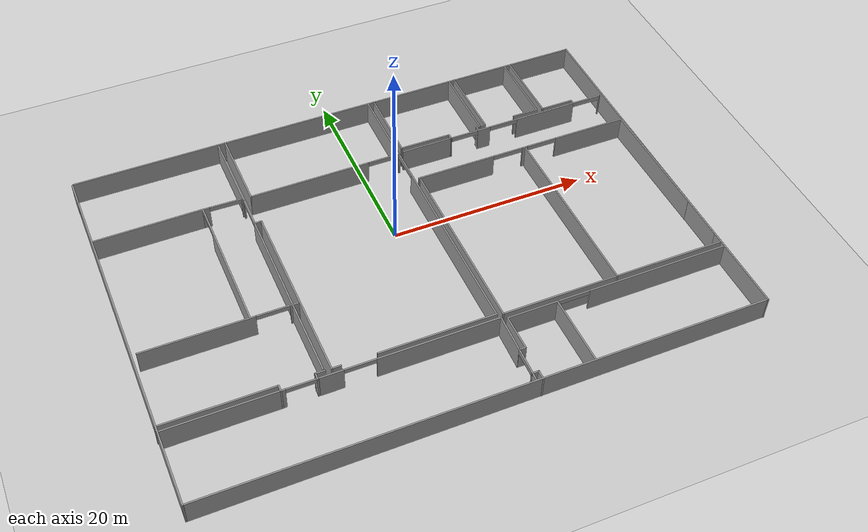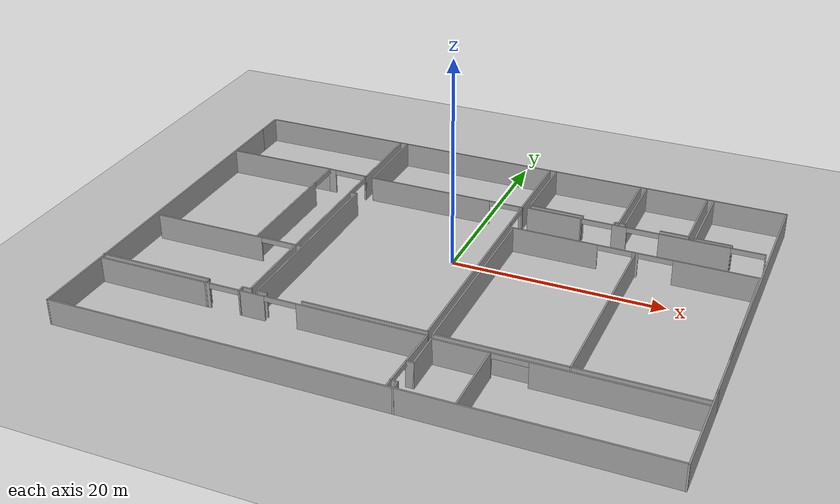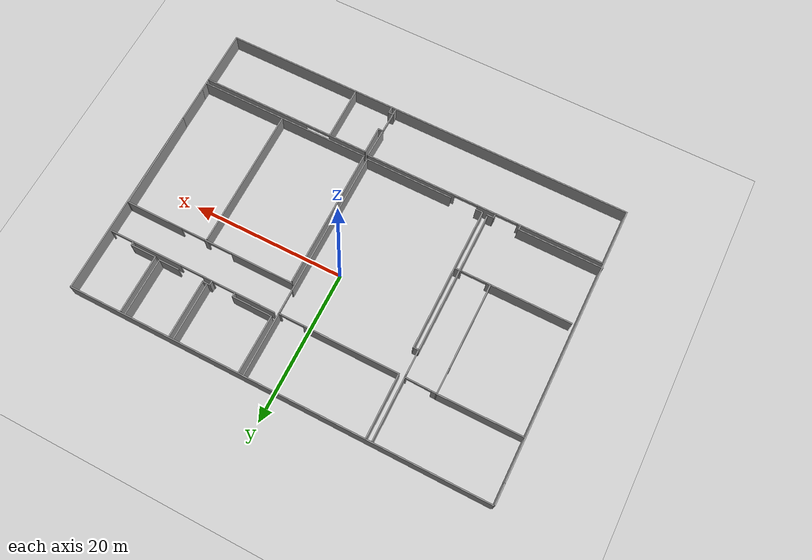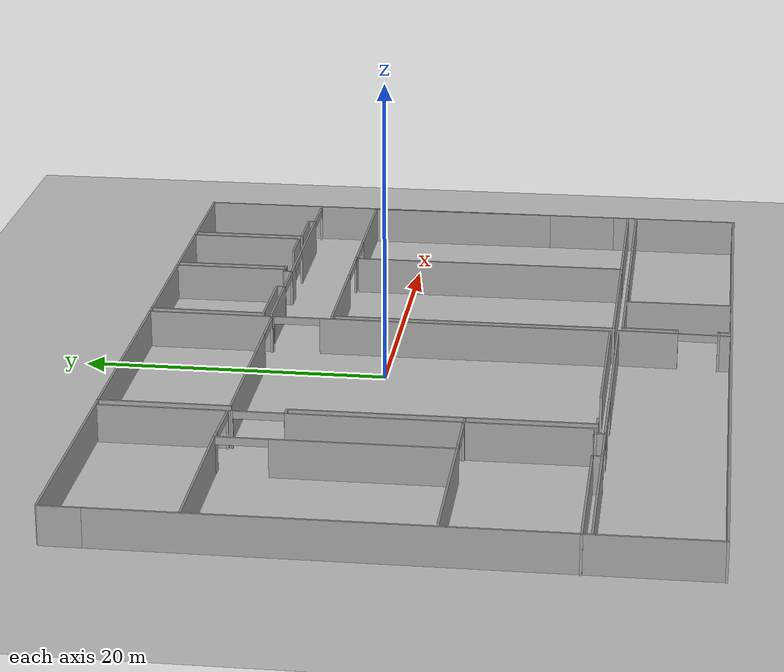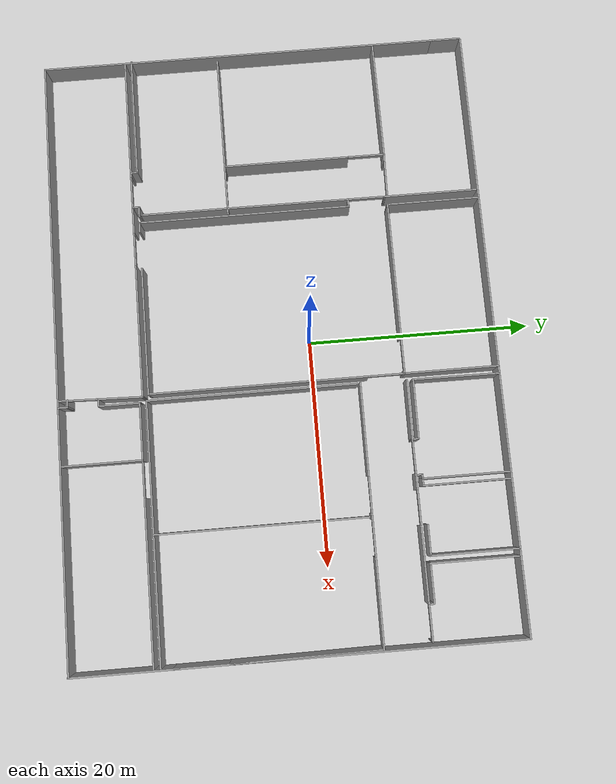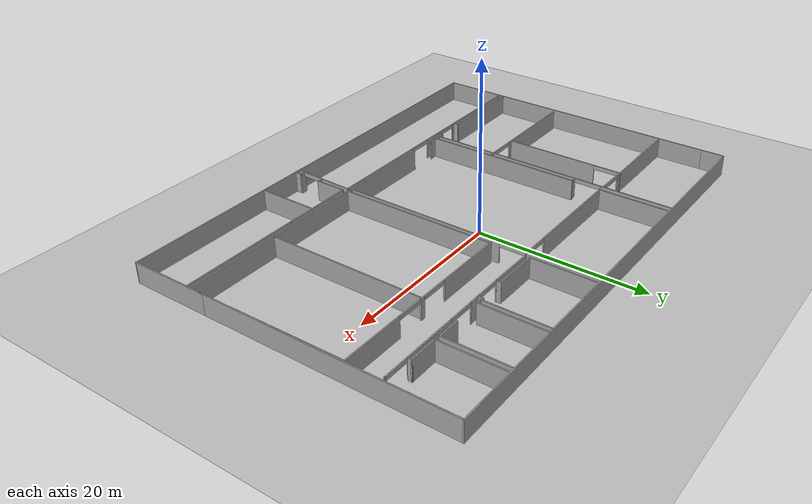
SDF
<sdf version="1.7">
 <world name="default">
  <model name="ground_plane">
   <static>1</static>
   <link name="link">
    <collision name="collision">
     <geometry><plane><normal>0 0 1</normal><size>100 100</size></plane></geometry>
     <surface>
      <contact><collide_bitmask>65535</collide_bitmask></contact>
      <friction><ode><mu>100</mu><mu2>50</mu2></ode></friction>
     </surface>
    </collision>
    <visual name="visual">
     <cast_shadows>0</cast_shadows>
     <geometry><plane><normal>0 0 1</normal><size>100 100</size></plane></geometry>
     <material>
      <script><uri>file://media/materials/scripts/gazebo.material</uri><name>Gazebo/Grey</name></script>
     </material>
    </visual>
   </link>
  </model>
  <light name="sun" type="directional">
   <pose>0 0 10 0 -0 0</pose>
   <diffuse>0.8 0.8 0.8 1</diffuse>
   <specular>0.2 0.2 0.2 1</specular>
   <attenuation>
    <range>1000</range>
    <constant>0.9</constant>
    <linear>0.01</linear>
    <quadratic>0.001</quadratic>
   </attenuation>
   <direction>-0.5 0.1 -0.9</direction>
   <spot><inner_angle>0</inner_angle><outer_angle>0</outer_angle><falloff>0</falloff></spot>
  </light>
  <scene><shadows>0</shadows><ambient>0.4 0.4 0.4 1</ambient><background>0.7 0.7 0.7 1</background></scene>
  <physics type="ode">
   <real_time_update_rate>1000</real_time_update_rate>
   <max_step_size>0.001</max_step_size>
   <real_time_factor>1</real_time_factor>
   <ode>
    <solver>
     <type>quick</type>
     <iters>150</iters>
     <precon_iters>0</precon_iters>
     <sor>1.4</sor>
     <use_dynamic_moi_rescaling>1</use_dynamic_moi_rescaling>
    </solver>
    <constraints>
     <cfm>1e-05</cfm>
     <erp>0.2</erp>
     <contact_max_correcting_vel>2000</contact_max_correcting_vel>
     <contact_surface_layer>0.01</contact_surface_layer>
    </constraints>
   </ode>
  </physics>
  <gravity>0 0 -9.8</gravity>
  <magnetic_field>6e-06 2.3e-05 -4.2e-05</magnetic_field>
  <atmosphere type="adiabatic"/>
  <spherical_coordinates>
   <surface_model>EARTH_WGS84</surface_model>
   <latitude_deg>0</latitude_deg>
   <longitude_deg>0</longitude_deg>
   <elevation>0</elevation>
   <heading_deg>0</heading_deg>
  </spherical_coordinates>
  <model name="Planta_2_acso">
   <pose>-0.237871 -3.03134 0 0 -0 0</pose>
   <link name="Wall_0">
    <collision name="Wall_0_Collision">
     <geometry><box><size>54.6462 0.15 2.5</size></box></geometry>
     <pose>0 0 1.25 0 -0 0</pose>
    </collision>
    <visual name="Wall_0_Visual">
     <pose>0 0 1.25 0 -0 0</pose>
     <geometry><box><size>54.6462 0.15 2.5</size></box></geometry>
     <material>
      <script><uri>file://media/materials/scripts/gazebo.material</uri><name>Gazebo/Grey</name></script>
      <ambient>1 1 1 1</ambient>
     </material>
     <meta><layer>0</layer></meta>
    </visual>
    <pose>0.111827 19.5205 0 0 -0 0</pose>
   </link>
   <link name="Wall_1">
    <collision name="Wall_1_Collision">
     <geometry><box><size>30.25 0.15 2.5</size></box></geometry>
     <pose>0 0 1.25 0 -0 0</pose>
    </collision>
    <visual name="Wall_1_Visual">
     <pose>0 0 1.25 0 -0 0</pose>
     <geometry><box><size>30.25 0.15 2.5</size></box></geometry>
     <material>
      <script><uri>file://media/materials/scripts/gazebo.material</uri><name>Gazebo/Grey</name></script>
      <ambient>1 1 1 1</ambient>
     </material>
     <meta><layer>0</layer></meta>
    </visual>
    <pose>27.3497 4.47048 0 0 -0 -1.5708</pose>
   </link>
   <link name="Wall_10">
    <pose>-11.457 -12.0264 0 0 -0 0</pose>
    <visual name="Wall_10_Visual_0">
     <pose>-10.1985 0 1.25 0 -0 0</pose>
     <geometry><box><size>11.1031 0.15 2.5</size></box></geometry>
     <material>
      <script><uri>file://media/materials/scripts/gazebo.material</uri><name>Gazebo/Grey</name></script>
      <ambient>1 1 1 1</ambient>
     </material>
     <meta><layer>0</layer></meta>
    </visual>
    <collision name="Wall_10_Collision_0">
     <geometry><box><size>11.1031 0.15 2.5</size></box></geometry>
     <pose>-10.1985 0 1.25 0 -0 0</pose>
    </collision>
    <visual name="Wall_10_Visual_1">
     <pose>-0.470314 0 1.25 0 -0 0</pose>
     <geometry><box><size>2.29482 0.15 2.5</size></box></geometry>
     <material>
      <script><uri>file://media/materials/scripts/gazebo.material</uri><name>Gazebo/Grey</name></script>
      <ambient>1 1 1 1</ambient>
     </material>
     <meta><layer>0</layer></meta>
    </visual>
    <collision name="Wall_10_Collision_1">
     <geometry><box><size>2.29482 0.15 2.5</size></box></geometry>
     <pose>-0.470314 0 1.25 0 -0 0</pose>
    </collision>
    <visual name="Wall_10_Visual_2">
     <pose>9.73709 0 1.25 0 -0 0</pose>
     <geometry><box><size>12.0258 0.15 2.5</size></box></geometry>
     <material>
      <script><uri>file://media/materials/scripts/gazebo.material</uri><name>Gazebo/Grey</name></script>
      <ambient>1 1 1 1</ambient>
     </material>
     <meta><layer>0</layer></meta>
    </visual>
    <collision name="Wall_10_Collision_2">
     <geometry><box><size>12.0258 0.15 2.5</size></box></geometry>
     <pose>9.73709 0 1.25 0 -0 0</pose>
    </collision>
    <visual name="Wall_10_Visual_3">
     <pose>-3.13232 0 2.25 0 -0 0</pose>
     <geometry><box><size>3.02918 0.15 0.5</size></box></geometry>
     <material>
      <script><uri>file://media/materials/scripts/gazebo.material</uri><name>Gazebo/Grey</name></script>
      <ambient>1 1 1 1</ambient>
     </material>
     <meta><layer>0</layer></meta>
    </visual>
    <collision name="Wall_10_Collision_3">
     <geometry><box><size>3.02918 0.15 0.5</size></box></geometry>
     <pose>-3.13232 0 2.25 0 -0 0</pose>
    </collision>
    <visual name="Wall_10_Visual_4">
     <pose>2.20064 0 2.25 0 -0 0</pose>
     <geometry><box><size>3.04709 0.15 0.5</size></box></geometry>
     <material>
      <script><uri>file://media/materials/scripts/gazebo.material</uri><name>Gazebo/Grey</name></script>
      <ambient>1 1 1 1</ambient>
     </material>
     <meta><layer>0</layer></meta>
    </visual>
    <collision name="Wall_10_Collision_4">
     <geometry><box><size>3.04709 0.15 0.5</size></box></geometry>
     <pose>2.20064 0 2.25 0 -0 0</pose>
    </collision>
   </link>
   <link name="Wall_100">
    <collision name="Wall_100_Collision">
     <geometry><box><size>11.75 0.15 2.5</size></box></geometry>
     <pose>0 0 1.25 0 -0 0</pose>
    </collision>
    <visual name="Wall_100_Visual">
     <pose>0 0 1.25 0 -0 0</pose>
     <geometry><box><size>11.75 0.15 2.5</size></box></geometry>
     <material>
      <script><uri>file://media/materials/scripts/gazebo.material</uri><name>Gazebo/Grey</name></script>
      <ambient>1 1 1 1</ambient>
     </material>
     <meta><layer>0</layer></meta>
    </visual>
    <pose>10.3815 -11.7028 0 0 -0 0</pose>
   </link>
   <link name="Wall_102">
    <collision name="Wall_102_Collision">
     <geometry><box><size>18.75 0.15 2.5</size></box></geometry>
     <pose>0 0 1.25 0 -0 0</pose>
    </collision>
    <visual name="Wall_102_Visual">
     <pose>0 0 1.25 0 -0 0</pose>
     <geometry><box><size>18.75 0.15 2.5</size></box></geometry>
     <material>
      <script><uri>file://media/materials/scripts/gazebo.material</uri><name>Gazebo/Grey</name></script>
      <ambient>1 1 1 1</ambient>
     </material>
     <meta><layer>0</layer></meta>
    </visual>
    <pose>16.1815 -2.40281 0 0 -0 1.5708</pose>
   </link>
   <link name="Wall_104">
    <collision name="Wall_104_Collision">
     <geometry><box><size>11.25 0.15 2.5</size></box></geometry>
     <pose>0 0 1.25 0 -0 0</pose>
    </collision>
    <visual name="Wall_104_Visual">
     <pose>0 0 1.25 0 -0 0</pose>
     <geometry><box><size>11.25 0.15 2.5</size></box></geometry>
     <material>
      <script><uri>file://media/materials/scripts/gazebo.material</uri><name>Gazebo/Grey</name></script>
      <ambient>1 1 1 1</ambient>
     </material>
     <meta><layer>0</layer></meta>
    </visual>
    <pose>21.7315 -11.7028 0 0 -0 0</pose>
   </link>
   <link name="Wall_12">
    <pose>4.09804 -15.7314 0 0 -0 -1.59993</pose>
    <visual name="Wall_12_Visual_0">
     <pose>-1.76739 0 1.25 0 -0 0</pose>
     <geometry><box><size>4.0287 0.15 2.5</size></box></geometry>
     <material>
      <script><uri>file://media/materials/scripts/gazebo.material</uri><name>Gazebo/Grey</name></script>
      <ambient>1 1 1 1</ambient>
     </material>
     <meta><layer>0</layer></meta>
    </visual>
    <collision name="Wall_12_Collision_0">
     <geometry><box><size>4.0287 0.15 2.5</size></box></geometry>
     <pose>-1.76739 0 1.25 0 -0 0</pose>
    </collision>
    <visual name="Wall_12_Visual_1">
     <pose>3.34882 0 1.25 0 -0 0</pose>
     <geometry><box><size>0.865847 0.15 2.5</size></box></geometry>
     <material>
      <script><uri>file://media/materials/scripts/gazebo.material</uri><name>Gazebo/Grey</name></script>
      <ambient>1 1 1 1</ambient>
     </material>
     <meta><layer>0</layer></meta>
    </visual>
    <collision name="Wall_12_Collision_1">
     <geometry><box><size>0.865847 0.15 2.5</size></box></geometry>
     <pose>3.34882 0 1.25 0 -0 0</pose>
    </collision>
    <visual name="Wall_12_Visual_2">
     <pose>1.58143 0 2.25 0 -0 0</pose>
     <geometry><box><size>2.66893 0.15 0.5</size></box></geometry>
     <material>
      <script><uri>file://media/materials/scripts/gazebo.material</uri><name>Gazebo/Grey</name></script>
      <ambient>1 1 1 1</ambient>
     </material>
     <meta><layer>0</layer></meta>
    </visual>
    <collision name="Wall_12_Collision_2">
     <geometry><box><size>2.66893 0.15 0.5</size></box></geometry>
     <pose>1.58143 0 2.25 0 -0 0</pose>
    </collision>
   </link>
   <link name="Wall_16">
    <pose>-19.3295 -3.39812 0 0 -0 0</pose>
    <visual name="Wall_16_Visual_0">
     <pose>-2.0336 0 1.25 0 -0 0</pose>
     <geometry><box><size>10.9328 0.15 2.5</size></box></geometry>
     <material>
      <script><uri>file://media/materials/scripts/gazebo.material</uri><name>Gazebo/Grey</name></script>
      <ambient>1 1 1 1</ambient>
     </material>
     <meta><layer>0</layer></meta>
    </visual>
    <collision name="Wall_16_Collision_0">
     <geometry><box><size>10.9328 0.15 2.5</size></box></geometry>
     <pose>-2.0336 0 1.25 0 -0 0</pose>
    </collision>
    <visual name="Wall_16_Visual_1">
     <pose>7.07304 0 1.25 0 -0 0</pose>
     <geometry><box><size>0.85391 0.15 2.5</size></box></geometry>
     <material>
      <script><uri>file://media/materials/scripts/gazebo.material</uri><name>Gazebo/Grey</name></script>
      <ambient>1 1 1 1</ambient>
     </material>
     <meta><layer>0</layer></meta>
    </visual>
    <collision name="Wall_16_Collision_1">
     <geometry><box><size>0.85391 0.15 2.5</size></box></geometry>
     <pose>7.07304 0 1.25 0 -0 0</pose>
    </collision>
    <visual name="Wall_16_Visual_2">
     <pose>5.03945 0 2.25 0 -0 0</pose>
     <geometry><box><size>3.21328 0.15 0.5</size></box></geometry>
     <material>
      <script><uri>file://media/materials/scripts/gazebo.material</uri><name>Gazebo/Grey</name></script>
      <ambient>1 1 1 1</ambient>
     </material>
     <meta><layer>0</layer></meta>
    </visual>
    <collision name="Wall_16_Collision_2">
     <geometry><box><size>3.21328 0.15 0.5</size></box></geometry>
     <pose>5.03945 0 2.25 0 -0 0</pose>
    </collision>
   </link>
   <link name="Wall_18">
    <collision name="Wall_18_Collision">
     <geometry><box><size>11 0.15 2.5</size></box></geometry>
     <pose>0 0 1.25 0 -0 0</pose>
    </collision>
    <visual name="Wall_18_Visual">
     <pose>0 0 1.25 0 -0 0</pose>
     <geometry><box><size>11 0.15 2.5</size></box></geometry>
     <material>
      <script><uri>file://media/materials/scripts/gazebo.material</uri><name>Gazebo/Grey</name></script>
      <ambient>1 1 1 1</ambient>
     </material>
     <meta><layer>0</layer></meta>
    </visual>
    <pose>-21.9349 -11.4391 0 0 -0 0</pose>
   </link>
   <link name="Wall_21">
    <collision name="Wall_21_Collision">
     <geometry><box><size>0.75 0.15 2.5</size></box></geometry>
     <pose>0 0 1.25 0 -0 0</pose>
    </collision>
    <visual name="Wall_21_Visual">
     <pose>0 0 1.25 0 -0 0</pose>
     <geometry><box><size>0.75 0.15 2.5</size></box></geometry>
     <material>
      <script><uri>file://media/materials/scripts/gazebo.material</uri><name>Gazebo/Grey</name></script>
      <ambient>1 1 1 1</ambient>
     </material>
     <meta><layer>0</layer></meta>
    </visual>
    <pose>-16.5099 -11.7391 0 0 -0 -1.5708</pose>
   </link>
   <link name="Wall_23">
    <collision name="Wall_23_Collision">
     <geometry><box><size>0.732411 0.15 2.5</size></box></geometry>
     <pose>0 0 1.25 0 -0 0</pose>
    </collision>
    <visual name="Wall_23_Visual">
     <pose>0 0 1.25 0 -0 0</pose>
     <geometry><box><size>0.732411 0.15 2.5</size></box></geometry>
     <material>
      <script><uri>file://media/materials/scripts/gazebo.material</uri><name>Gazebo/Grey</name></script>
      <ambient>1 1 1 1</ambient>
     </material>
     <meta><layer>0</layer></meta>
    </visual>
    <pose>-13.1866 -11.7467 0 0 -0 1.5406</pose>
   </link>
   <link name="Wall_24">
    <collision name="Wall_24_Collision">
     <geometry><box><size>1 0.15 2.5</size></box></geometry>
     <pose>0 0 1.25 0 -0 0</pose>
    </collision>
    <visual name="Wall_24_Visual">
     <pose>0 0 1.25 0 -0 0</pose>
     <geometry><box><size>1 0.15 2.5</size></box></geometry>
     <material>
      <script><uri>file://media/materials/scripts/gazebo.material</uri><name>Gazebo/Grey</name></script>
      <ambient>1 1 1 1</ambient>
     </material>
     <meta><layer>0</layer></meta>
    </visual>
    <pose>-12.7704 -11.4555 0 0 -0 0</pose>
   </link>
   <link name="Wall_26">
    <collision name="Wall_26_Collision">
     <geometry><box><size>8 0.15 2.5</size></box></geometry>
     <pose>0 0 1.25 0 -0 0</pose>
    </collision>
    <visual name="Wall_26_Visual">
     <pose>0 0 1.25 0 -0 0</pose>
     <geometry><box><size>8 0.15 2.5</size></box></geometry>
     <material>
      <script><uri>file://media/materials/scripts/gazebo.material</uri><name>Gazebo/Grey</name></script>
      <ambient>1 1 1 1</ambient>
     </material>
     <meta><layer>0</layer></meta>
    </visual>
    <pose>-12.4136 -7.29546 0 0 -0 1.5708</pose>
   </link>
   <link name="Wall_3">
    <collision name="Wall_3_Collision">
     <geometry><box><size>9.5 0.15 2.5</size></box></geometry>
     <pose>0 0 1.25 0 -0 0</pose>
    </collision>
    <visual name="Wall_3_Visual">
     <pose>0 0 1.25 0 -0 0</pose>
     <geometry><box><size>9.5 0.15 2.5</size></box></geometry>
     <material>
      <script><uri>file://media/materials/scripts/gazebo.material</uri><name>Gazebo/Grey</name></script>
      <ambient>1 1 1 1</ambient>
     </material>
     <meta><layer>0</layer></meta>
    </visual>
    <pose>27.3514 -14.8145 0 0 -0 -1.5708</pose>
   </link>
   <link name="Wall_30">
    <pose>-16.4216 3.99947 0 0 -0 1.57009</pose>
    <visual name="Wall_30_Visual_0">
     <pose>-1.69188 0 1.25 0 -0 0</pose>
     <geometry><box><size>11.3644 0.15 2.5</size></box></geometry>
     <material>
      <script><uri>file://media/materials/scripts/gazebo.material</uri><name>Gazebo/Grey</name></script>
      <ambient>1 1 1 1</ambient>
     </material>
     <meta><layer>0</layer></meta>
    </visual>
    <collision name="Wall_30_Collision_0">
     <geometry><box><size>11.3644 0.15 2.5</size></box></geometry>
     <pose>-1.69188 0 1.25 0 -0 0</pose>
    </collision>
    <visual name="Wall_30_Visual_1">
     <pose>7.29807 0 1.25 0 -0 0</pose>
     <geometry><box><size>0.152051 0.15 2.5</size></box></geometry>
     <material>
      <script><uri>file://media/materials/scripts/gazebo.material</uri><name>Gazebo/Grey</name></script>
      <ambient>1 1 1 1</ambient>
     </material>
     <meta><layer>0</layer></meta>
    </visual>
    <collision name="Wall_30_Collision_1">
     <geometry><box><size>0.152051 0.15 2.5</size></box></geometry>
     <pose>7.29807 0 1.25 0 -0 0</pose>
    </collision>
    <visual name="Wall_30_Visual_2">
     <pose>5.60619 0 2.25 0 -0 0</pose>
     <geometry><box><size>3.23171 0.15 0.5</size></box></geometry>
     <material>
      <script><uri>file://media/materials/scripts/gazebo.material</uri><name>Gazebo/Grey</name></script>
      <ambient>1 1 1 1</ambient>
     </material>
     <meta><layer>0</layer></meta>
    </visual>
    <collision name="Wall_30_Collision_2">
     <geometry><box><size>3.23171 0.15 0.5</size></box></geometry>
     <pose>5.60619 0 2.25 0 -0 0</pose>
    </collision>
   </link>
   <link name="Wall_33">
    <collision name="Wall_33_Collision">
     <geometry><box><size>10.8565 0.15 2.5</size></box></geometry>
     <pose>0 0 1.25 0 -0 0</pose>
    </collision>
    <visual name="Wall_33_Visual">
     <pose>0 0 1.25 0 -0 0</pose>
     <geometry><box><size>10.8565 0.15 2.5</size></box></geometry>
     <material>
      <script><uri>file://media/materials/scripts/gazebo.material</uri><name>Gazebo/Grey</name></script>
      <ambient>1 1 1 1</ambient>
     </material>
     <meta><layer>0</layer></meta>
    </visual>
    <pose>-21.7696 11.2652 0 0 -0 -3.13536</pose>
   </link>
   <link name="Wall_36">
    <pose>-14.4144 11.247 0 0 -0 -0.020551</pose>
    <visual name="Wall_36_Visual_0">
     <pose>-1.70533 0 1.25 0 -0 0</pose>
     <geometry><box><size>0.744166 0.15 2.5</size></box></geometry>
     <material>
      <script><uri>file://media/materials/scripts/gazebo.material</uri><name>Gazebo/Grey</name></script>
      <ambient>1 1 1 1</ambient>
     </material>
     <meta><layer>0</layer></meta>
    </visual>
    <collision name="Wall_36_Collision_0">
     <geometry><box><size>0.744166 0.15 2.5</size></box></geometry>
     <pose>-1.70533 0 1.25 0 -0 0</pose>
    </collision>
    <visual name="Wall_36_Visual_1">
     <pose>1.95357 0 1.25 0 -0 0</pose>
     <geometry><box><size>0.247684 0.15 2.5</size></box></geometry>
     <material>
      <script><uri>file://media/materials/scripts/gazebo.material</uri><name>Gazebo/Grey</name></script>
      <ambient>1 1 1 1</ambient>
     </material>
     <meta><layer>0</layer></meta>
    </visual>
    <collision name="Wall_36_Collision_1">
     <geometry><box><size>0.247684 0.15 2.5</size></box></geometry>
     <pose>1.95357 0 1.25 0 -0 0</pose>
    </collision>
    <visual name="Wall_36_Visual_2">
     <pose>0.248241 0 2.25 0 -0 0</pose>
     <geometry><box><size>3.16298 0.15 0.5</size></box></geometry>
     <material>
      <script><uri>file://media/materials/scripts/gazebo.material</uri><name>Gazebo/Grey</name></script>
      <ambient>1 1 1 1</ambient>
     </material>
     <meta><layer>0</layer></meta>
    </visual>
    <collision name="Wall_36_Collision_2">
     <geometry><box><size>3.16298 0.15 0.5</size></box></geometry>
     <pose>0.248241 0 2.25 0 -0 0</pose>
    </collision>
   </link>
   <link name="Wall_39">
    <pose>-12.3929 3.80454 0 0 -0 1.56791</pose>
    <visual name="Wall_39_Visual_0">
     <pose>-1.69622 0 1.25 0 -0 0</pose>
     <geometry><box><size>11.1076 0.15 2.5</size></box></geometry>
     <material>
      <script><uri>file://media/materials/scripts/gazebo.material</uri><name>Gazebo/Grey</name></script>
      <ambient>1 1 1 1</ambient>
     </material>
     <meta><layer>0</layer></meta>
    </visual>
    <collision name="Wall_39_Collision_0">
     <geometry><box><size>11.1076 0.15 2.5</size></box></geometry>
     <pose>-1.69622 0 1.25 0 -0 0</pose>
    </collision>
    <visual name="Wall_39_Visual_1">
     <pose>7.16265 0 1.25 0 -0 0</pose>
     <geometry><box><size>0.174753 0.15 2.5</size></box></geometry>
     <material>
      <script><uri>file://media/materials/scripts/gazebo.material</uri><name>Gazebo/Grey</name></script>
      <ambient>1 1 1 1</ambient>
     </material>
     <meta><layer>0</layer></meta>
    </visual>
    <collision name="Wall_39_Collision_1">
     <geometry><box><size>0.174753 0.15 2.5</size></box></geometry>
     <pose>7.16265 0 1.25 0 -0 0</pose>
    </collision>
    <visual name="Wall_39_Visual_2">
     <pose>5.46644 0 2.25 0 -0 0</pose>
     <geometry><box><size>3.21768 0.15 0.5</size></box></geometry>
     <material>
      <script><uri>file://media/materials/scripts/gazebo.material</uri><name>Gazebo/Grey</name></script>
      <ambient>1 1 1 1</ambient>
     </material>
     <meta><layer>0</layer></meta>
    </visual>
    <collision name="Wall_39_Collision_2">
     <geometry><box><size>3.21768 0.15 0.5</size></box></geometry>
     <pose>5.46644 0 2.25 0 -0 0</pose>
    </collision>
   </link>
   <link name="Wall_4">
    <collision name="Wall_4_Collision">
     <geometry><box><size>54.781 0.15 2.5</size></box></geometry>
     <pose>0 0 1.25 0 -0 0</pose>
    </collision>
    <visual name="Wall_4_Visual">
     <pose>0 0 1.25 0 -0 0</pose>
     <geometry><box><size>54.781 0.15 2.5</size></box></geometry>
     <material>
      <script><uri>file://media/materials/scripts/gazebo.material</uri><name>Gazebo/Grey</name></script>
      <ambient>1 1 1 1</ambient>
     </material>
     <meta><layer>0</layer></meta>
    </visual>
    <pose>0.03594 -19.4895 0 0 -0 -3.14046</pose>
   </link>
   <link name="Wall_41">
    <pose>-3.80425 11.1649 0 0 -0 0</pose>
    <visual name="Wall_41_Visual_0">
     <pose>-1.67357 0 1.25 0 -0 0</pose>
     <geometry><box><size>12.4029 0.15 2.5</size></box></geometry>
     <material>
      <script><uri>file://media/materials/scripts/gazebo.material</uri><name>Gazebo/Grey</name></script>
      <ambient>1 1 1 1</ambient>
     </material>
     <meta><layer>0</layer></meta>
    </visual>
    <collision name="Wall_41_Collision_0">
     <geometry><box><size>12.4029 0.15 2.5</size></box></geometry>
     <pose>-1.67357 0 1.25 0 -0 0</pose>
    </collision>
    <visual name="Wall_41_Visual_1">
     <pose>7.68077 0 1.25 0 -0 0</pose>
     <geometry><box><size>0.388471 0.15 2.5</size></box></geometry>
     <material>
      <script><uri>file://media/materials/scripts/gazebo.material</uri><name>Gazebo/Grey</name></script>
      <ambient>1 1 1 1</ambient>
     </material>
     <meta><layer>0</layer></meta>
    </visual>
    <collision name="Wall_41_Collision_1">
     <geometry><box><size>0.388471 0.15 2.5</size></box></geometry>
     <pose>7.68077 0 1.25 0 -0 0</pose>
    </collision>
    <visual name="Wall_41_Visual_2">
     <pose>6.00719 0 2.25 0 -0 0</pose>
     <geometry><box><size>2.95868 0.15 0.5</size></box></geometry>
     <material>
      <script><uri>file://media/materials/scripts/gazebo.material</uri><name>Gazebo/Grey</name></script>
      <ambient>1 1 1 1</ambient>
     </material>
     <meta><layer>0</layer></meta>
    </visual>
    <collision name="Wall_41_Collision_2">
     <geometry><box><size>2.95868 0.15 0.5</size></box></geometry>
     <pose>6.00719 0 2.25 0 -0 0</pose>
    </collision>
   </link>
   <link name="Wall_42">
    <collision name="Wall_42_Collision">
     <geometry><box><size>8.5 0.15 2.5</size></box></geometry>
     <pose>0 0 1.25 0 -0 0</pose>
    </collision>
    <visual name="Wall_42_Visual">
     <pose>0 0 1.25 0 -0 0</pose>
     <geometry><box><size>8.5 0.15 2.5</size></box></geometry>
     <material>
      <script><uri>file://media/materials/scripts/gazebo.material</uri><name>Gazebo/Grey</name></script>
      <ambient>1 1 1 1</ambient>
     </material>
     <meta><layer>0</layer></meta>
    </visual>
    <pose>3.99575 15.3399 0 0 -0 1.5708</pose>
   </link>
   <link name="Wall_44">
    <collision name="Wall_44_Collision">
     <geometry><box><size>8.5 0.15 2.5</size></box></geometry>
     <pose>0 0 1.25 0 -0 0</pose>
    </collision>
    <visual name="Wall_44_Visual">
     <pose>0 0 1.25 0 -0 0</pose>
     <geometry><box><size>8.5 0.15 2.5</size></box></geometry>
     <material>
      <script><uri>file://media/materials/scripts/gazebo.material</uri><name>Gazebo/Grey</name></script>
      <ambient>1 1 1 1</ambient>
     </material>
     <meta><layer>0</layer></meta>
    </visual>
    <pose>-11.6043 15.3399 0 0 -0 1.5708</pose>
   </link>
   <link name="Wall_46">
    <collision name="Wall_46_Collision">
     <geometry><box><size>8.5 0.15 2.5</size></box></geometry>
     <pose>0 0 1.25 0 -0 0</pose>
    </collision>
    <visual name="Wall_46_Visual">
     <pose>0 0 1.25 0 -0 0</pose>
     <geometry><box><size>8.5 0.15 2.5</size></box></geometry>
     <material>
      <script><uri>file://media/materials/scripts/gazebo.material</uri><name>Gazebo/Grey</name></script>
      <ambient>1 1 1 1</ambient>
     </material>
     <meta><layer>0</layer></meta>
    </visual>
    <pose>-12.3721 15.1649 0 0 -0 1.5708</pose>
   </link>
   <link name="Wall_48">
    <collision name="Wall_48_Collision">
     <geometry><box><size>0.75 0.15 2.5</size></box></geometry>
     <pose>0 0 1.25 0 -0 0</pose>
    </collision>
    <visual name="Wall_48_Visual">
     <pose>0 0 1.25 0 -0 0</pose>
     <geometry><box><size>0.75 0.15 2.5</size></box></geometry>
     <material>
      <script><uri>file://media/materials/scripts/gazebo.material</uri><name>Gazebo/Grey</name></script>
      <ambient>1 1 1 1</ambient>
     </material>
     <meta><layer>0</layer></meta>
    </visual>
    <pose>-12.0145 7.61146 0 0 -0 0</pose>
   </link>
   <link name="Wall_49">
    <collision name="Wall_49_Collision">
     <geometry><box><size>19.25 0.15 2.5</size></box></geometry>
     <pose>0 0 1.25 0 -0 0</pose>
    </collision>
    <visual name="Wall_49_Visual">
     <pose>0 0 1.25 0 -0 0</pose>
     <geometry><box><size>19.25 0.15 2.5</size></box></geometry>
     <material>
      <script><uri>file://media/materials/scripts/gazebo.material</uri><name>Gazebo/Grey</name></script>
      <ambient>1 1 1 1</ambient>
     </material>
     <meta><layer>0</layer></meta>
    </visual>
    <pose>-11.7145 -1.93854 0 0 -0 -1.5708</pose>
   </link>
   <link name="Wall_5">
    <collision name="Wall_5_Collision">
     <geometry><box><size>36.5 0.15 2.5</size></box></geometry>
     <pose>0 0 1.25 0 -0 0</pose>
    </collision>
    <visual name="Wall_5_Visual">
     <pose>0 0 1.25 0 -0 0</pose>
     <geometry><box><size>36.5 0.15 2.5</size></box></geometry>
     <material>
      <script><uri>file://media/materials/scripts/gazebo.material</uri><name>Gazebo/Grey</name></script>
      <ambient>1 1 1 1</ambient>
     </material>
     <meta><layer>0</layer></meta>
    </visual>
    <pose>-27.2795 -1.3454 0 0 -0 1.5708</pose>
   </link>
   <link name="Wall_51">
    <collision name="Wall_51_Collision">
     <geometry><box><size>1 0.15 2.5</size></box></geometry>
     <pose>0 0 1.25 0 -0 0</pose>
    </collision>
    <visual name="Wall_51_Visual">
     <pose>0 0 1.25 0 -0 0</pose>
     <geometry><box><size>1 0.15 2.5</size></box></geometry>
     <material>
      <script><uri>file://media/materials/scripts/gazebo.material</uri><name>Gazebo/Grey</name></script>
      <ambient>1 1 1 1</ambient>
     </material>
     <meta><layer>0</layer></meta>
    </visual>
    <pose>-11.2895 -11.4885 0 0 -0 0</pose>
   </link>
   <link name="Wall_53">
    <collision name="Wall_53_Collision">
     <geometry><box><size>11.5511 0.15 2.5</size></box></geometry>
     <pose>0 0 1.25 0 -0 0</pose>
    </collision>
    <visual name="Wall_53_Visual">
     <pose>0 0 1.25 0 -0 0</pose>
     <geometry><box><size>11.5511 0.15 2.5</size></box></geometry>
     <material>
      <script><uri>file://media/materials/scripts/gazebo.material</uri><name>Gazebo/Grey</name></script>
      <ambient>1 1 1 1</ambient>
     </material>
     <meta><layer>0</layer></meta>
    </visual>
    <pose>-1.68888 -11.5001 0 0 -0 -0.001666</pose>
   </link>
   <link name="Wall_54">
    <pose>4.01169 -0.199373 0 0 -0 1.5708</pose>
    <visual name="Wall_54_Visual_0">
     <pose>-1.61835 0 1.25 0 -0 0</pose>
     <geometry><box><size>19.5133 0.15 2.5</size></box></geometry>
     <material>
      <script><uri>file://media/materials/scripts/gazebo.material</uri><name>Gazebo/Grey</name></script>
      <ambient>1 1 1 1</ambient>
     </material>
     <meta><layer>0</layer></meta>
    </visual>
    <collision name="Wall_54_Collision_0">
     <geometry><box><size>19.5133 0.15 2.5</size></box></geometry>
     <pose>-1.61835 0 1.25 0 -0 0</pose>
    </collision>
    <visual name="Wall_54_Visual_1">
     <pose>11.3003 0 1.25 0 -0 0</pose>
     <geometry><box><size>0.149361 0.15 2.5</size></box></geometry>
     <material>
      <script><uri>file://media/materials/scripts/gazebo.material</uri><name>Gazebo/Grey</name></script>
      <ambient>1 1 1 1</ambient>
     </material>
     <meta><layer>0</layer></meta>
    </visual>
    <collision name="Wall_54_Collision_1">
     <geometry><box><size>0.149361 0.15 2.5</size></box></geometry>
     <pose>11.3003 0 1.25 0 -0 0</pose>
    </collision>
    <visual name="Wall_54_Visual_2">
     <pose>9.68197 0 2.25 0 -0 0</pose>
     <geometry><box><size>3.08734 0.15 0.5</size></box></geometry>
     <material>
      <script><uri>file://media/materials/scripts/gazebo.material</uri><name>Gazebo/Grey</name></script>
      <ambient>1 1 1 1</ambient>
     </material>
     <meta><layer>0</layer></meta>
    </visual>
    <collision name="Wall_54_Collision_2">
     <geometry><box><size>3.08734 0.15 0.5</size></box></geometry>
     <pose>9.68197 0 2.25 0 -0 0</pose>
    </collision>
   </link>
   <link name="Wall_56">
    <collision name="Wall_56_Collision">
     <geometry><box><size>0.75 0.15 2.5</size></box></geometry>
     <pose>0 0 1.25 0 -0 0</pose>
    </collision>
    <visual name="Wall_56_Visual">
     <pose>0 0 1.25 0 -0 0</pose>
     <geometry><box><size>0.75 0.15 2.5</size></box></geometry>
     <material>
      <script><uri>file://media/materials/scripts/gazebo.material</uri><name>Gazebo/Grey</name></script>
      <ambient>1 1 1 1</ambient>
     </material>
     <meta><layer>0</layer></meta>
    </visual>
    <pose>4.41529 -15.9073 0 0 -0 0</pose>
   </link>
   <link name="Wall_57">
    <collision name="Wall_57_Collision">
     <geometry><box><size>3.75 0.15 2.5</size></box></geometry>
     <pose>0 0 1.25 0 -0 0</pose>
    </collision>
    <visual name="Wall_57_Visual">
     <pose>0 0 1.25 0 -0 0</pose>
     <geometry><box><size>3.75 0.15 2.5</size></box></geometry>
     <material>
      <script><uri>file://media/materials/scripts/gazebo.material</uri><name>Gazebo/Grey</name></script>
      <ambient>1 1 1 1</ambient>
     </material>
     <meta><layer>0</layer></meta>
    </visual>
    <pose>4.71529 -14.1073 0 0 -0 1.5708</pose>
   </link>
   <link name="Wall_58">
    <pose>16.0153 -12.3073 0 0 -0 0</pose>
    <visual name="Wall_58_Visual_0">
     <pose>-8.77984 0 1.25 0 -0 0</pose>
     <geometry><box><size>5.19033 0.15 2.5</size></box></geometry>
     <material>
      <script><uri>file://media/materials/scripts/gazebo.material</uri><name>Gazebo/Grey</name></script>
      <ambient>1 1 1 1</ambient>
     </material>
     <meta><layer>0</layer></meta>
    </visual>
    <collision name="Wall_58_Collision_0">
     <geometry><box><size>5.19033 0.15 2.5</size></box></geometry>
     <pose>-8.77984 0 1.25 0 -0 0</pose>
    </collision>
    <visual name="Wall_58_Visual_1">
     <pose>4.18077 0 1.25 0 -0 0</pose>
     <geometry><box><size>14.3885 0.15 2.5</size></box></geometry>
     <material>
      <script><uri>file://media/materials/scripts/gazebo.material</uri><name>Gazebo/Grey</name></script>
      <ambient>1 1 1 1</ambient>
     </material>
     <meta><layer>0</layer></meta>
    </visual>
    <collision name="Wall_58_Collision_1">
     <geometry><box><size>14.3885 0.15 2.5</size></box></geometry>
     <pose>4.18077 0 1.25 0 -0 0</pose>
    </collision>
    <visual name="Wall_58_Visual_2">
     <pose>-4.59906 0 2.25 0 -0 0</pose>
     <geometry><box><size>3.17122 0.15 0.5</size></box></geometry>
     <material>
      <script><uri>file://media/materials/scripts/gazebo.material</uri><name>Gazebo/Grey</name></script>
      <ambient>1 1 1 1</ambient>
     </material>
     <meta><layer>0</layer></meta>
    </visual>
    <collision name="Wall_58_Collision_2">
     <geometry><box><size>3.17122 0.15 0.5</size></box></geometry>
     <pose>-4.59906 0 2.25 0 -0 0</pose>
    </collision>
   </link>
   <link name="Wall_60">
    <collision name="Wall_60_Collision">
     <geometry><box><size>7.25 0.15 2.5</size></box></geometry>
     <pose>0 0 1.25 0 -0 0</pose>
    </collision>
    <visual name="Wall_60_Visual">
     <pose>0 0 1.25 0 -0 0</pose>
     <geometry><box><size>7.25 0.15 2.5</size></box></geometry>
     <material>
      <script><uri>file://media/materials/scripts/gazebo.material</uri><name>Gazebo/Grey</name></script>
      <ambient>1 1 1 1</ambient>
     </material>
     <meta><layer>0</layer></meta>
    </visual>
    <pose>9.73312 -15.8906 0 0 -0 1.5708</pose>
   </link>
   <link name="Wall_64">
    <collision name="Wall_64_Collision">
     <geometry><box><size>0.7766 0.15 2.5</size></box></geometry>
     <pose>0 0 1.25 0 -0 0</pose>
    </collision>
    <visual name="Wall_64_Visual">
     <pose>0 0 1.25 0 -0 0</pose>
     <geometry><box><size>0.7766 0.15 2.5</size></box></geometry>
     <material>
      <script><uri>file://media/materials/scripts/gazebo.material</uri><name>Gazebo/Grey</name></script>
      <ambient>1 1 1 1</ambient>
     </material>
     <meta><layer>0</layer></meta>
    </visual>
    <pose>4.29535 -18.6564 0 0 -0 0</pose>
   </link>
   <link name="Wall_65">
    <collision name="Wall_65_Collision">
     <geometry><box><size>1 0.15 2.5</size></box></geometry>
     <pose>0 0 1.25 0 -0 0</pose>
    </collision>
    <visual name="Wall_65_Visual">
     <pose>0 0 1.25 0 -0 0</pose>
     <geometry><box><size>1 0.15 2.5</size></box></geometry>
     <material>
      <script><uri>file://media/materials/scripts/gazebo.material</uri><name>Gazebo/Grey</name></script>
      <ambient>1 1 1 1</ambient>
     </material>
     <meta><layer>0</layer></meta>
    </visual>
    <pose>4.59535 -19.0814 0 0 -0 -1.5708</pose>
   </link>
   <link name="Wall_68">
    <collision name="Wall_68_Collision">
     <geometry><box><size>7.77335 0.15 2.5</size></box></geometry>
     <pose>0 0 1.25 0 -0 0</pose>
    </collision>
    <visual name="Wall_68_Visual">
     <pose>0 0 1.25 0 -0 0</pose>
     <geometry><box><size>7.77335 0.15 2.5</size></box></geometry>
     <material>
      <script><uri>file://media/materials/scripts/gazebo.material</uri><name>Gazebo/Grey</name></script>
      <ambient>1 1 1 1</ambient>
     </material>
     <meta><layer>0</layer></meta>
    </visual>
    <pose>4.63094 15.6656 0 0 -0 -1.57838</pose>
   </link>
   <link name="Wall_69">
    <collision name="Wall_69_Collision">
     <geometry><box><size>5.37714 0.15 2.5</size></box></geometry>
     <pose>0 0 1.25 0 -0 0</pose>
    </collision>
    <visual name="Wall_69_Visual">
     <pose>0 0 1.25 0 -0 0</pose>
     <geometry><box><size>5.37714 0.15 2.5</size></box></geometry>
     <material>
      <script><uri>file://media/materials/scripts/gazebo.material</uri><name>Gazebo/Grey</name></script>
      <ambient>1 1 1 1</ambient>
     </material>
     <meta><layer>0</layer></meta>
    </visual>
    <pose>7.21547 11.8392 0 0 -0 -0.010095</pose>
   </link>
   <link name="Wall_7">
    <collision name="Wall_7_Collision">
     <geometry><box><size>2.75 0.15 2.5</size></box></geometry>
     <pose>0 0 1.25 0 -0 0</pose>
    </collision>
    <visual name="Wall_7_Visual">
     <pose>0 0 1.25 0 -0 0</pose>
     <geometry><box><size>2.75 0.15 2.5</size></box></geometry>
     <material>
      <script><uri>file://media/materials/scripts/gazebo.material</uri><name>Gazebo/Grey</name></script>
      <ambient>1 1 1 1</ambient>
     </material>
     <meta><layer>0</layer></meta>
    </visual>
    <pose>-27.2795 18.1296 0 0 -0 1.5708</pose>
   </link>
   <link name="Wall_70">
    <collision name="Wall_70_Collision">
     <geometry><box><size>0.679333 0.15 2.5</size></box></geometry>
     <pose>0 0 1.25 0 -0 0</pose>
    </collision>
    <visual name="Wall_70_Visual">
     <pose>0 0 1.25 0 -0 0</pose>
     <geometry><box><size>0.679333 0.15 2.5</size></box></geometry>
     <material>
      <script><uri>file://media/materials/scripts/gazebo.material</uri><name>Gazebo/Grey</name></script>
      <ambient>1 1 1 1</ambient>
     </material>
     <meta><layer>0</layer></meta>
    </visual>
    <pose>9.82589 11.5366 0 0 -0 -1.58218</pose>
   </link>
   <link name="Wall_71">
    <collision name="Wall_71_Collision">
     <geometry><box><size>5.39458 0.15 2.5</size></box></geometry>
     <pose>0 0 1.25 0 -0 0</pose>
    </collision>
    <visual name="Wall_71_Visual">
     <pose>0 0 1.25 0 -0 0</pose>
     <geometry><box><size>5.39458 0.15 2.5</size></box></geometry>
     <material>
      <script><uri>file://media/materials/scripts/gazebo.material</uri><name>Gazebo/Grey</name></script>
      <ambient>1 1 1 1</ambient>
     </material>
     <meta><layer>0</layer></meta>
    </visual>
    <pose>7.21221 11.2895 0 0 -0 3.13489</pose>
   </link>
   <link name="Wall_74">
    <pose>18.3844 11.2719 0 0 -0 0</pose>
    <visual name="Wall_74_Visual_0">
     <pose>-8.59125 0 1.25 0 -0 0</pose>
     <geometry><box><size>0.067506 0.15 2.5</size></box></geometry>
     <material>
      <script><uri>file://media/materials/scripts/gazebo.material</uri><name>Gazebo/Grey</name></script>
      <ambient>1 1 1 1</ambient>
     </material>
     <meta><layer>0</layer></meta>
    </visual>
    <collision name="Wall_74_Collision_0">
     <geometry><box><size>0.067506 0.15 2.5</size></box></geometry>
     <pose>-8.59125 0 1.25 0 -0 0</pose>
    </collision>
    <visual name="Wall_74_Visual_1">
     <pose>-4.87819 0 1.25 0 -0 0</pose>
     <geometry><box><size>1.40796 0.15 2.5</size></box></geometry>
     <material>
      <script><uri>file://media/materials/scripts/gazebo.material</uri><name>Gazebo/Grey</name></script>
      <ambient>1 1 1 1</ambient>
     </material>
     <meta><layer>0</layer></meta>
    </visual>
    <collision name="Wall_74_Collision_1">
     <geometry><box><size>1.40796 0.15 2.5</size></box></geometry>
     <pose>-4.87819 0 1.25 0 -0 0</pose>
    </collision>
    <visual name="Wall_74_Visual_2">
     <pose>2.15883 0 1.25 0 -0 0</pose>
     <geometry><box><size>6.59124 0.15 2.5</size></box></geometry>
     <material>
      <script><uri>file://media/materials/scripts/gazebo.material</uri><name>Gazebo/Grey</name></script>
      <ambient>1 1 1 1</ambient>
     </material>
     <meta><layer>0</layer></meta>
    </visual>
    <collision name="Wall_74_Collision_2">
     <geometry><box><size>6.59124 0.15 2.5</size></box></geometry>
     <pose>2.15883 0 1.25 0 -0 0</pose>
    </collision>
    <visual name="Wall_74_Visual_3">
     <pose>8.57534 0 1.25 0 -0 0</pose>
     <geometry><box><size>0.099314 0.15 2.5</size></box></geometry>
     <material>
      <script><uri>file://media/materials/scripts/gazebo.material</uri><name>Gazebo/Grey</name></script>
      <ambient>1 1 1 1</ambient>
     </material>
     <meta><layer>0</layer></meta>
    </visual>
    <collision name="Wall_74_Collision_3">
     <geometry><box><size>0.099314 0.15 2.5</size></box></geometry>
     <pose>8.57534 0 1.25 0 -0 0</pose>
    </collision>
    <visual name="Wall_74_Visual_4">
     <pose>-7.06983 0 2.25 0 -0 0</pose>
     <geometry><box><size>2.97533 0.15 0.5</size></box></geometry>
     <material>
      <script><uri>file://media/materials/scripts/gazebo.material</uri><name>Gazebo/Grey</name></script>
      <ambient>1 1 1 1</ambient>
     </material>
     <meta><layer>0</layer></meta>
    </visual>
    <collision name="Wall_74_Collision_4">
     <geometry><box><size>2.97533 0.15 0.5</size></box></geometry>
     <pose>-7.06983 0 2.25 0 -0 0</pose>
    </collision>
    <visual name="Wall_74_Visual_5">
     <pose>-2.6555 0 2.25 0 -0 0</pose>
     <geometry><box><size>3.03742 0.15 0.5</size></box></geometry>
     <material>
      <script><uri>file://media/materials/scripts/gazebo.material</uri><name>Gazebo/Grey</name></script>
      <ambient>1 1 1 1</ambient>
     </material>
     <meta><layer>0</layer></meta>
    </visual>
    <collision name="Wall_74_Collision_5">
     <geometry><box><size>3.03742 0.15 0.5</size></box></geometry>
     <pose>-2.6555 0 2.25 0 -0 0</pose>
    </collision>
    <visual name="Wall_74_Visual_6">
     <pose>6.99007 0 2.25 0 -0 0</pose>
     <geometry><box><size>3.07124 0.15 0.5</size></box></geometry>
     <material>
      <script><uri>file://media/materials/scripts/gazebo.material</uri><name>Gazebo/Grey</name></script>
      <ambient>1 1 1 1</ambient>
     </material>
     <meta><layer>0</layer></meta>
    </visual>
    <collision name="Wall_74_Collision_6">
     <geometry><box><size>3.07124 0.15 0.5</size></box></geometry>
     <pose>6.99007 0 2.25 0 -0 0</pose>
    </collision>
   </link>
   <link name="Wall_77">
    <collision name="Wall_77_Collision">
     <geometry><box><size>0.626831 0.15 2.5</size></box></geometry>
     <pose>0 0 1.25 0 -0 0</pose>
    </collision>
    <visual name="Wall_77_Visual">
     <pose>0 0 1.25 0 -0 0</pose>
     <geometry><box><size>0.626831 0.15 2.5</size></box></geometry>
     <material>
      <script><uri>file://media/materials/scripts/gazebo.material</uri><name>Gazebo/Grey</name></script>
      <ambient>1 1 1 1</ambient>
     </material>
     <meta><layer>0</layer></meta>
    </visual>
    <pose>12.9436 11.578 0 0 -0 1.56025</pose>
   </link>
   <link name="Wall_78">
    <collision name="Wall_78_Collision">
     <geometry><box><size>0.5 0.15 2.5</size></box></geometry>
     <pose>0 0 1.25 0 -0 0</pose>
    </collision>
    <visual name="Wall_78_Visual">
     <pose>0 0 1.25 0 -0 0</pose>
     <geometry><box><size>0.5 0.15 2.5</size></box></geometry>
     <material>
      <script><uri>file://media/materials/scripts/gazebo.material</uri><name>Gazebo/Grey</name></script>
      <ambient>1 1 1 1</ambient>
     </material>
     <meta><layer>0</layer></meta>
    </visual>
    <pose>13.1211 11.8189 0 0 -0 0</pose>
   </link>
   <link name="Wall_79">
    <collision name="Wall_79_Collision">
     <geometry><box><size>7.75 0.15 2.5</size></box></geometry>
     <pose>0 0 1.25 0 -0 0</pose>
    </collision>
    <visual name="Wall_79_Visual">
     <pose>0 0 1.25 0 -0 0</pose>
     <geometry><box><size>7.75 0.15 2.5</size></box></geometry>
     <material>
      <script><uri>file://media/materials/scripts/gazebo.material</uri><name>Gazebo/Grey</name></script>
      <ambient>1 1 1 1</ambient>
     </material>
     <meta><layer>0</layer></meta>
    </visual>
    <pose>13.2961 15.6164 0 0 -0 1.5708</pose>
   </link>
   <link name="Wall_82">
    <collision name="Wall_82_Collision">
     <geometry><box><size>0.75 0.15 2.5</size></box></geometry>
     <pose>0 0 1.25 0 -0 0</pose>
    </collision>
    <visual name="Wall_82_Visual">
     <pose>0 0 1.25 0 -0 0</pose>
     <geometry><box><size>0.75 0.15 2.5</size></box></geometry>
     <material>
      <script><uri>file://media/materials/scripts/gazebo.material</uri><name>Gazebo/Grey</name></script>
      <ambient>1 1 1 1</ambient>
     </material>
     <meta><layer>0</layer></meta>
    </visual>
    <pose>13.5961 11.8164 0 0 -0 0</pose>
   </link>
   <link name="Wall_83">
    <collision name="Wall_83_Collision">
     <geometry><box><size>7.75 0.15 2.5</size></box></geometry>
     <pose>0 0 1.25 0 -0 0</pose>
    </collision>
    <visual name="Wall_83_Visual">
     <pose>0 0 1.25 0 -0 0</pose>
     <geometry><box><size>7.75 0.15 2.5</size></box></geometry>
     <material>
      <script><uri>file://media/materials/scripts/gazebo.material</uri><name>Gazebo/Grey</name></script>
      <ambient>1 1 1 1</ambient>
     </material>
     <meta><layer>0</layer></meta>
    </visual>
    <pose>13.8961 15.6164 0 0 -0 1.5708</pose>
   </link>
   <link name="Wall_85">
    <collision name="Wall_85_Collision">
     <geometry><box><size>2.75 0.15 2.5</size></box></geometry>
     <pose>0 0 1.25 0 -0 0</pose>
    </collision>
    <visual name="Wall_85_Visual">
     <pose>0 0 1.25 0 -0 0</pose>
     <geometry><box><size>2.75 0.15 2.5</size></box></geometry>
     <material>
      <script><uri>file://media/materials/scripts/gazebo.material</uri><name>Gazebo/Grey</name></script>
      <ambient>1 1 1 1</ambient>
     </material>
     <meta><layer>0</layer></meta>
    </visual>
    <pose>18.5573 11.8436 0 0 -0 0</pose>
   </link>
   <link name="Wall_86">
    <collision name="Wall_86_Collision">
     <geometry><box><size>7.75 0.15 2.5</size></box></geometry>
     <pose>0 0 1.25 0 -0 0</pose>
    </collision>
    <visual name="Wall_86_Visual">
     <pose>0 0 1.25 0 -0 0</pose>
     <geometry><box><size>7.75 0.15 2.5</size></box></geometry>
     <material>
      <script><uri>file://media/materials/scripts/gazebo.material</uri><name>Gazebo/Grey</name></script>
      <ambient>1 1 1 1</ambient>
     </material>
     <meta><layer>0</layer></meta>
    </visual>
    <pose>19.8573 15.6436 0 0 -0 1.5708</pose>
   </link>
   <link name="Wall_88">
    <collision name="Wall_88_Collision">
     <geometry><box><size>7.75 0.15 2.5</size></box></geometry>
     <pose>0 0 1.25 0 -0 0</pose>
    </collision>
    <visual name="Wall_88_Visual">
     <pose>0 0 1.25 0 -0 0</pose>
     <geometry><box><size>7.75 0.15 2.5</size></box></geometry>
     <material>
      <script><uri>file://media/materials/scripts/gazebo.material</uri><name>Gazebo/Grey</name></script>
      <ambient>1 1 1 1</ambient>
     </material>
     <meta><layer>0</layer></meta>
    </visual>
    <pose>20.4857 15.536 0 0 -0 1.5708</pose>
   </link>
   <link name="Wall_90">
    <collision name="Wall_90_Collision">
     <geometry><box><size>3.5 0.15 2.5</size></box></geometry>
     <pose>0 0 1.25 0 -0 0</pose>
    </collision>
    <visual name="Wall_90_Visual">
     <pose>0 0 1.25 0 -0 0</pose>
     <geometry><box><size>3.5 0.15 2.5</size></box></geometry>
     <material>
      <script><uri>file://media/materials/scripts/gazebo.material</uri><name>Gazebo/Grey</name></script>
      <ambient>1 1 1 1</ambient>
     </material>
     <meta><layer>0</layer></meta>
    </visual>
    <pose>22.1607 11.736 0 0 -0 0</pose>
   </link>
   <link name="Wall_91">
    <collision name="Wall_91_Collision">
     <geometry><box><size>0.5 0.15 2.5</size></box></geometry>
     <pose>0 0 1.25 0 -0 0</pose>
    </collision>
    <visual name="Wall_91_Visual">
     <pose>0 0 1.25 0 -0 0</pose>
     <geometry><box><size>0.5 0.15 2.5</size></box></geometry>
     <material>
      <script><uri>file://media/materials/scripts/gazebo.material</uri><name>Gazebo/Grey</name></script>
      <ambient>1 1 1 1</ambient>
     </material>
     <meta><layer>0</layer></meta>
    </visual>
    <pose>23.8357 11.561 0 0 -0 -1.5708</pose>
   </link>
   <link name="Wall_94">
    <pose>15.8745 7.15111 0 0 -0 -0.002726</pose>
    <visual name="Wall_94_Visual_0">
     <pose>-7.31718 0 1.25 0 -0 0</pose>
     <geometry><box><size>8.21103 0.15 2.5</size></box></geometry>
     <material>
      <script><uri>file://media/materials/scripts/gazebo.material</uri><name>Gazebo/Grey</name></script>
      <ambient>1 1 1 1</ambient>
     </material>
     <meta><layer>0</layer></meta>
    </visual>
    <collision name="Wall_94_Collision_0">
     <geometry><box><size>8.21103 0.15 2.5</size></box></geometry>
     <pose>-7.31718 0 1.25 0 -0 0</pose>
    </collision>
    <visual name="Wall_94_Visual_1">
     <pose>0.263725 0 1.25 0 -0 0</pose>
     <geometry><box><size>0.580432 0.15 2.5</size></box></geometry>
     <material>
      <script><uri>file://media/materials/scripts/gazebo.material</uri><name>Gazebo/Grey</name></script>
      <ambient>1 1 1 1</ambient>
     </material>
     <meta><layer>0</layer></meta>
    </visual>
    <collision name="Wall_94_Collision_1">
     <geometry><box><size>0.580432 0.15 2.5</size></box></geometry>
     <pose>0.263725 0 1.25 0 -0 0</pose>
    </collision>
    <visual name="Wall_94_Visual_2">
     <pose>7.57372 0 1.25 0 -0 0</pose>
     <geometry><box><size>7.69795 0.15 2.5</size></box></geometry>
     <material>
      <script><uri>file://media/materials/scripts/gazebo.material</uri><name>Gazebo/Grey</name></script>
      <ambient>1 1 1 1</ambient>
     </material>
     <meta><layer>0</layer></meta>
    </visual>
    <collision name="Wall_94_Collision_2">
     <geometry><box><size>7.69795 0.15 2.5</size></box></geometry>
     <pose>7.57372 0 1.25 0 -0 0</pose>
    </collision>
    <visual name="Wall_94_Visual_3">
     <pose>-1.61908 0 2.25 0 -0 0</pose>
     <geometry><box><size>3.18517 0.15 0.5</size></box></geometry>
     <material>
      <script><uri>file://media/materials/scripts/gazebo.material</uri><name>Gazebo/Grey</name></script>
      <ambient>1 1 1 1</ambient>
     </material>
     <meta><layer>0</layer></meta>
    </visual>
    <collision name="Wall_94_Collision_3">
     <geometry><box><size>3.18517 0.15 0.5</size></box></geometry>
     <pose>-1.61908 0 2.25 0 -0 0</pose>
    </collision>
    <visual name="Wall_94_Visual_4">
     <pose>2.13934 0 2.25 0 -0 0</pose>
     <geometry><box><size>3.1708 0.15 0.5</size></box></geometry>
     <material>
      <script><uri>file://media/materials/scripts/gazebo.material</uri><name>Gazebo/Grey</name></script>
      <ambient>1 1 1 1</ambient>
     </material>
     <meta><layer>0</layer></meta>
    </visual>
    <collision name="Wall_94_Collision_4">
     <geometry><box><size>3.1708 0.15 0.5</size></box></geometry>
     <pose>2.13934 0 2.25 0 -0 0</pose>
    </collision>
   </link>
   <link name="Wall_95">
    <collision name="Wall_95_Collision">
     <geometry><box><size>13.1406 0.15 2.5</size></box></geometry>
     <pose>0 0 1.25 0 -0 0</pose>
    </collision>
    <visual name="Wall_95_Visual">
     <pose>0 0 1.25 0 -0 0</pose>
     <geometry><box><size>13.1406 0.15 2.5</size></box></geometry>
     <material>
      <script><uri>file://media/materials/scripts/gazebo.material</uri><name>Gazebo/Grey</name></script>
      <ambient>1 1 1 1</ambient>
     </material>
     <meta><layer>0</layer></meta>
    </visual>
    <pose>27.2796 0.635479 0 0 -0 -1.56195</pose>
   </link>
   <link name="Wall_97">
    <collision name="Wall_97_Collision">
     <geometry><box><size>18.75 0.15 2.5</size></box></geometry>
     <pose>0 0 1.25 0 -0 0</pose>
    </collision>
    <visual name="Wall_97_Visual">
     <pose>0 0 1.25 0 -0 0</pose>
     <geometry><box><size>18.75 0.15 2.5</size></box></geometry>
     <material>
      <script><uri>file://media/materials/scripts/gazebo.material</uri><name>Gazebo/Grey</name></script>
      <ambient>1 1 1 1</ambient>
     </material>
     <meta><layer>0</layer></meta>
    </visual>
    <pose>4.58155 -2.40281 0 0 -0 1.5708</pose>
   </link>
   <static>1</static>
  </model>
 </world>
</sdf>
